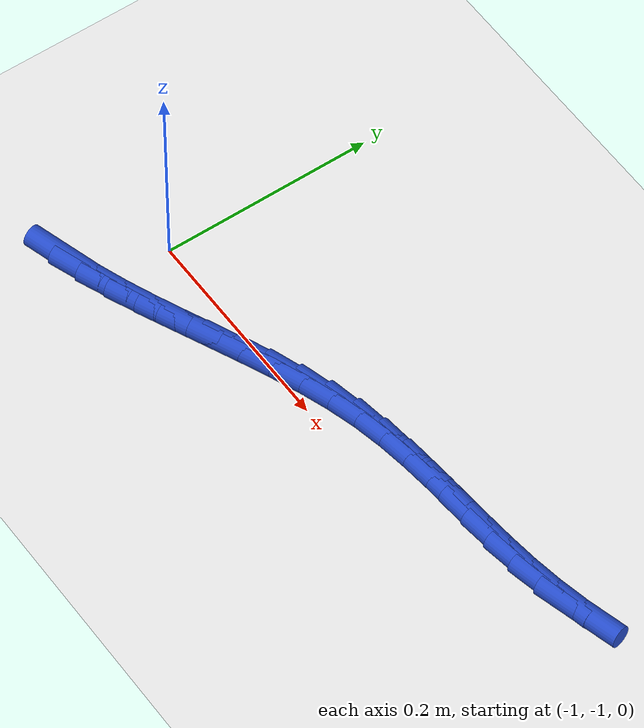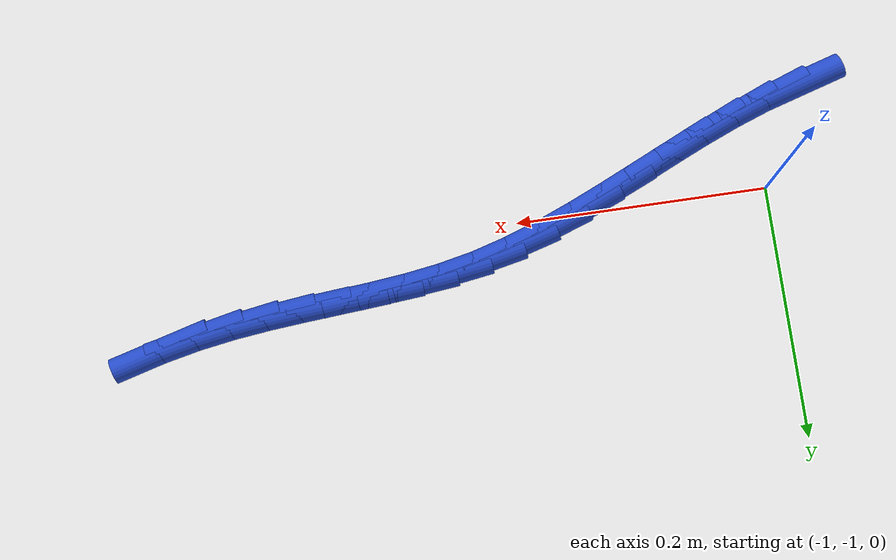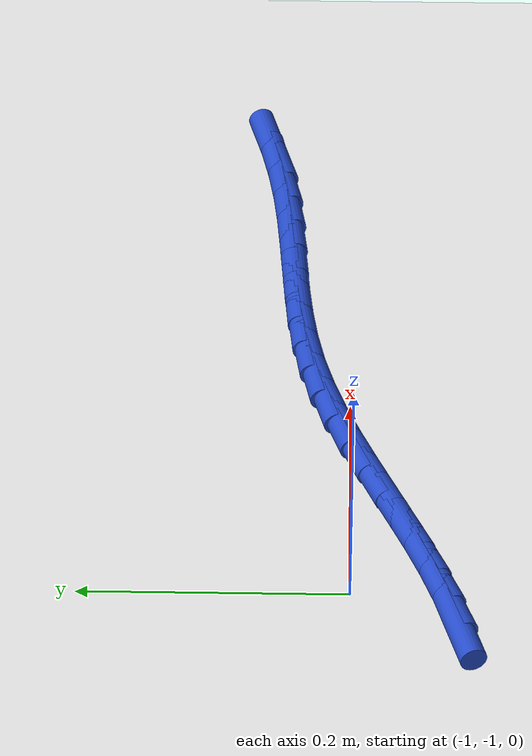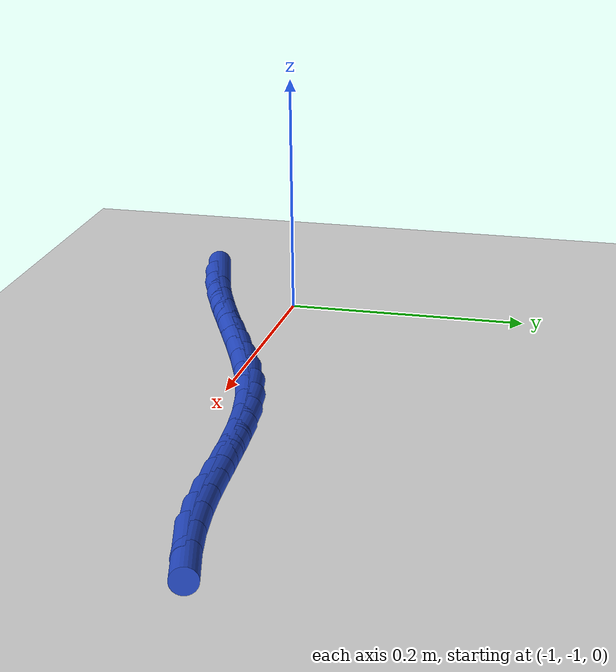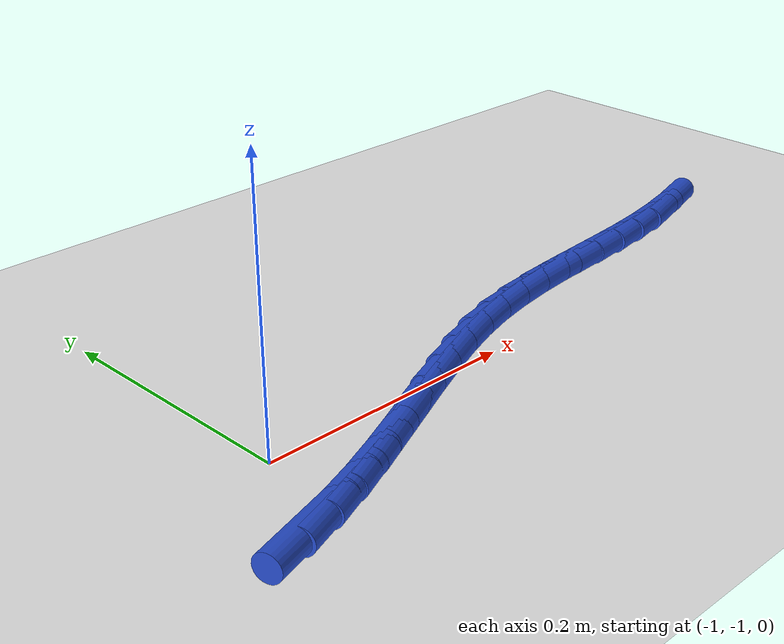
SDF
<sdf version="1.6">
 <world name="default">
  <model name="ground_plane">
   <static>1</static>
   <link name="link">
    <collision name="collision">
     <geometry><plane><normal>0 0 1</normal><size>100 100</size></plane></geometry>
     <surface><friction><ode><mu>100</mu><mu2>50</mu2></ode></friction></surface>
    </collision>
    <visual name="visual">
     <cast_shadows>0</cast_shadows>
     <geometry><plane><normal>0 0 1</normal><size>100 100</size></plane></geometry>
     <material>
      <script><uri>file://media/materials/scripts/gazebo.material</uri><name>Gazebo/WhiteGlow</name></script>
     </material>
    </visual>
   </link>
  </model>
  <model name="line">
   <link name="link_181">
    <pose>-1.0358448299557603 -1.0771897888276438 0.01 0 1.57 0.28818516350896106</pose>
    <collision name="collision">
     <geometry><cylinder><radius>0.01</radius><length>0.08</length></cylinder></geometry>
    </collision>
    <visual name="visual">
     <material>
      <script><name>Gazebo/Blue</name><uri>file://media/materials/scripts/gazebo.material</uri></script>
     </material>
     <geometry><cylinder><radius>0.01</radius><length>0.08</length></cylinder></geometry>
    </visual>
   </link>
   <link name="link_182">
    <pose>-1.0093014348985756 -1.0693213336456613 0.01 0 1.57 0.34770395896473144</pose>
    <collision name="collision">
     <geometry><cylinder><radius>0.01</radius><length>0.08</length></cylinder></geometry>
    </collision>
    <visual name="visual">
     <material>
      <script><name>Gazebo/Blue</name><uri>file://media/materials/scripts/gazebo.material</uri></script>
     </material>
     <geometry><cylinder><radius>0.01</radius><length>0.08</length></cylinder></geometry>
    </visual>
   </link>
   <link name="link_183">
    <pose>-0.9825468338883799 -1.0596246986407922 0.01 0 1.57 0.38970058637445626</pose>
    <collision name="collision">
     <geometry><cylinder><radius>0.01</radius><length>0.08</length></cylinder></geometry>
    </collision>
    <visual name="visual">
     <material>
      <script><name>Gazebo/Blue</name><uri>file://media/materials/scripts/gazebo.material</uri></script>
     </material>
     <geometry><cylinder><radius>0.01</radius><length>0.08</length></cylinder></geometry>
    </visual>
   </link>
   <link name="link_184">
    <pose>-0.9556005849307715 -1.0485577407069733 0.01 0 1.57 0.4159689265779754</pose>
    <collision name="collision">
     <geometry><cylinder><radius>0.01</radius><length>0.08</length></cylinder></geometry>
    </collision>
    <visual name="visual">
     <material>
      <script><name>Gazebo/Blue</name><uri>file://media/materials/scripts/gazebo.material</uri></script>
     </material>
     <geometry><cylinder><radius>0.01</radius><length>0.08</length></cylinder></geometry>
    </visual>
   </link>
   <link name="link_185">
    <pose>-0.9284822460313487 -1.0365783167381415 0.01 0 1.57 0.42778726156129304</pose>
    <collision name="collision">
     <geometry><cylinder><radius>0.01</radius><length>0.08</length></cylinder></geometry>
    </collision>
    <visual name="visual">
     <material>
      <script><name>Gazebo/Blue</name><uri>file://media/materials/scripts/gazebo.material</uri></script>
     </material>
     <geometry><cylinder><radius>0.01</radius><length>0.08</length></cylinder></geometry>
    </visual>
   </link>
   <link name="link_186">
    <pose>-0.9012113751957109 -1.0241442836282337 0.01 0 1.57 0.4258557996019538</pose>
    <collision name="collision">
     <geometry><cylinder><radius>0.01</radius><length>0.08</length></cylinder></geometry>
    </collision>
    <visual name="visual">
     <material>
      <script><name>Gazebo/Blue</name><uri>file://media/materials/scripts/gazebo.material</uri></script>
     </material>
     <geometry><cylinder><radius>0.01</radius><length>0.08</length></cylinder></geometry>
    </visual>
   </link>
   <link name="link_187">
    <pose>-0.8738075304294561 -1.0117134982711862 0.01 0 1.57 0.410300142152686</pose>
    <collision name="collision">
     <geometry><cylinder><radius>0.01</radius><length>0.08</length></cylinder></geometry>
    </collision>
    <visual name="visual">
     <material>
      <script><name>Gazebo/Blue</name><uri>file://media/materials/scripts/gazebo.material</uri></script>
     </material>
     <geometry><cylinder><radius>0.01</radius><length>0.08</length></cylinder></geometry>
    </visual>
   </link>
   <link name="link_188">
    <pose>-0.8462902697381833 -0.9997438175609359 0.01 0 1.57 0.38070217635716247</pose>
    <collision name="collision">
     <geometry><cylinder><radius>0.01</radius><length>0.08</length></cylinder></geometry>
    </collision>
    <visual name="visual">
     <material>
      <script><name>Gazebo/Blue</name><uri>file://media/materials/scripts/gazebo.material</uri></script>
     </material>
     <geometry><cylinder><radius>0.01</radius><length>0.08</length></cylinder></geometry>
    </visual>
   </link>
   <link name="link_189">
    <pose>-0.8186791511274906 -0.9886930983914195 0.01 0 1.57 0.3361600113268675</pose>
    <collision name="collision">
     <geometry><cylinder><radius>0.01</radius><length>0.08</length></cylinder></geometry>
    </collision>
    <visual name="visual">
     <material>
      <script><name>Gazebo/Blue</name><uri>file://media/materials/scripts/gazebo.material</uri></script>
     </material>
     <geometry><cylinder><radius>0.01</radius><length>0.08</length></cylinder></geometry>
    </visual>
   </link>
   <link name="link_190">
    <pose>-0.7909937326029763 -0.9790191976565736 0.01 0 1.57 0.2754222786950328</pose>
    <collision name="collision">
     <geometry><cylinder><radius>0.01</radius><length>0.08</length></cylinder></geometry>
    </collision>
    <visual name="visual">
     <material>
      <script><name>Gazebo/Blue</name><uri>file://media/materials/scripts/gazebo.material</uri></script>
     </material>
     <geometry><cylinder><radius>0.01</radius><length>0.08</length></cylinder></geometry>
    </visual>
   </link>
   <link name="link_191">
    <pose>-0.7632535650232137 -0.9711796996601821 0.01 0 1.57 0.20480467798303517</pose>
    <collision name="collision">
     <geometry><cylinder><radius>0.01</radius><length>0.08</length></cylinder></geometry>
    </collision>
    <visual name="visual">
     <material>
      <script><name>Gazebo/Blue</name><uri>file://media/materials/scripts/gazebo.material</uri></script>
     </material>
     <geometry><cylinder><radius>0.01</radius><length>0.08</length></cylinder></geometry>
    </visual>
   </link>
   <link name="link_192">
    <pose>-0.7354723492370431 -0.9654090672108182 0.01 0 1.57 0.1460744915789255</pose>
    <collision name="collision">
     <geometry><cylinder><radius>0.01</radius><length>0.08</length></cylinder></geometry>
    </collision>
    <visual name="visual">
     <material>
      <script><name>Gazebo/Blue</name><uri>file://media/materials/scripts/gazebo.material</uri></script>
     </material>
     <geometry><cylinder><radius>0.01</radius><length>0.08</length></cylinder></geometry>
    </visual>
   </link>
   <link name="link_193">
    <pose>-0.707647363209845 -0.9613153883789263 0.01 0 1.57 0.10429484787107536</pose>
    <collision name="collision">
     <geometry><cylinder><radius>0.01</radius><length>0.08</length></cylinder></geometry>
    </collision>
    <visual name="visual">
     <material>
      <script><name>Gazebo/Blue</name><uri>file://media/materials/scripts/gazebo.material</uri></script>
     </material>
     <geometry><cylinder><radius>0.01</radius><length>0.08</length></cylinder></geometry>
    </visual>
   </link>
   <link name="link_194">
    <pose>-0.6797730244307467 -0.9583976516321444 0.01 0 1.57 0.08013111208477612</pose>
    <collision name="collision">
     <geometry><cylinder><radius>0.01</radius><length>0.08</length></cylinder></geometry>
    </collision>
    <visual name="visual">
     <material>
      <script><name>Gazebo/Blue</name><uri>file://media/materials/scripts/gazebo.material</uri></script>
     </material>
     <geometry><cylinder><radius>0.01</radius><length>0.08</length></cylinder></geometry>
    </visual>
   </link>
   <link name="link_195">
    <pose>-0.6518437503888762 -0.9561548454381116 0.01 0 1.57 0.0737816012846531</pose>
    <collision name="collision">
     <geometry><cylinder><radius>0.01</radius><length>0.08</length></cylinder></geometry>
    </collision>
    <visual name="visual">
     <material>
      <script><name>Gazebo/Blue</name><uri>file://media/materials/scripts/gazebo.material</uri></script>
     </material>
     <geometry><cylinder><radius>0.01</radius><length>0.08</length></cylinder></geometry>
    </visual>
   </link>
   <link name="link_196">
    <pose>-0.6238539585733616 -0.9540859582644665 0.01 0 1.57 0.08519352184035221</pose>
    <collision name="collision">
     <geometry><cylinder><radius>0.01</radius><length>0.08</length></cylinder></geometry>
    </collision>
    <visual name="visual">
     <material>
      <script><name>Gazebo/Blue</name><uri>file://media/materials/scripts/gazebo.material</uri></script>
     </material>
     <geometry><cylinder><radius>0.01</radius><length>0.08</length></cylinder></geometry>
    </visual>
   </link>
   <link name="link_197">
    <pose>-0.5957980664733311 -0.9516899785788483 0.01 0 1.57 0.11412551808123993</pose>
    <collision name="collision">
     <geometry><cylinder><radius>0.01</radius><length>0.08</length></cylinder></geometry>
    </collision>
    <visual name="visual">
     <material>
      <script><name>Gazebo/Blue</name><uri>file://media/materials/scripts/gazebo.material</uri></script>
     </material>
     <geometry><cylinder><radius>0.01</radius><length>0.08</length></cylinder></geometry>
    </visual>
   </link>
   <link name="link_198">
    <pose>-0.5676704915779125 -0.9484658948488957 0.01 0 1.57 0.1594893084908486</pose>
    <collision name="collision">
     <geometry><cylinder><radius>0.01</radius><length>0.08</length></cylinder></geometry>
    </collision>
    <visual name="visual">
     <material>
      <script><name>Gazebo/Blue</name><uri>file://media/materials/scripts/gazebo.material</uri></script>
     </material>
     <geometry><cylinder><radius>0.01</radius><length>0.08</length></cylinder></geometry>
    </visual>
   </link>
   <link name="link_199">
    <pose>-0.5394723539916937 -0.9439300689828526 0.01 0 1.57 0.2119932956044981</pose>
    <collision name="collision">
     <geometry><cylinder><radius>0.01</radius><length>0.08</length></cylinder></geometry>
    </collision>
    <visual name="visual">
     <material>
      <script><name>Gazebo/Blue</name><uri>file://media/materials/scripts/gazebo.material</uri></script>
     </material>
     <geometry><cylinder><radius>0.01</radius><length>0.08</length></cylinder></geometry>
    </visual>
   </link>
   <link name="link_200">
    <pose>-0.5113088015905745 -0.9378685069282231 0.01 0 1.57 0.265191296958614</pose>
    <collision name="collision">
     <geometry><cylinder><radius>0.01</radius><length>0.08</length></cylinder></geometry>
    </collision>
    <visual name="visual">
     <material>
      <script><name>Gazebo/Blue</name><uri>file://media/materials/scripts/gazebo.material</uri></script>
     </material>
     <geometry><cylinder><radius>0.01</radius><length>0.08</length></cylinder></geometry>
    </visual>
   </link>
  </model>
 </world>
</sdf>
